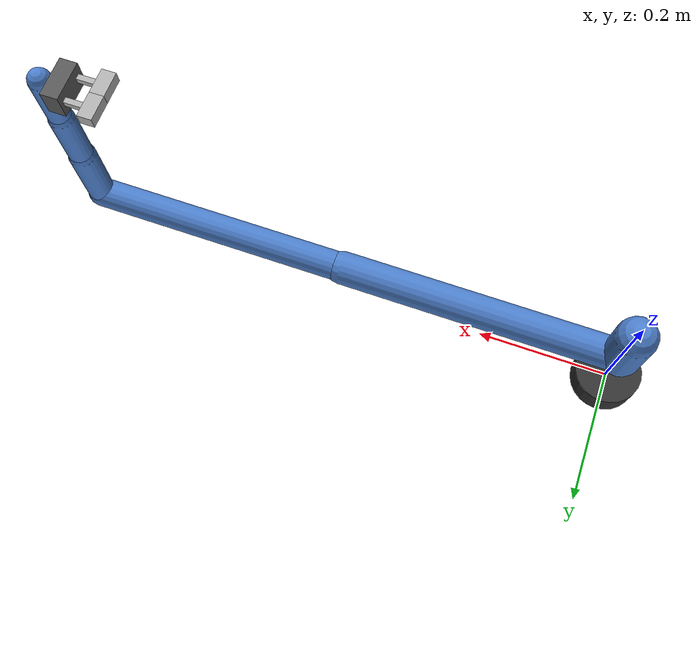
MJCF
<mujoco model="my6dof_base">
  <compiler angle="radian" autolimits="true"/>
  <option gravity="0 0 -9.81" integrator="implicitfast" timestep="0.002"/>

  <default>
    <joint damping="4.0" armature="0.08" limited="true"/>
    <geom contype="1" conaffinity="6" friction="0.8 0.1 0.1" rgba="0.3 0.5 0.8 1"/>
    <position kp="2500" kv="120"/>
  </default>

  <worldbody>
    <body name="robot_base" pos="0 0 0">
      <geom name="base_geom" type="cylinder" size="0.05 0.02" rgba="0.2 0.2 0.2 1"/>

      <body name="link1" pos="0 0 0.089159">
        <joint name="joint_1" type="hinge" axis="0 0 1" range="-6.28319 6.28319"/>
        <geom name="link1_geom" type="capsule" fromto="0 0 0 0 0 0.08" size="0.03"/>

        <body name="link2" pos="0 0 0">
          <joint name="joint_2" type="hinge" axis="0 1 0" range="-3.14159 0"/>
          <geom name="link2_geom" type="capsule" fromto="0 0 0 0.425 0 0" size="0.025"/>

          <body name="link3" pos="0.425 0 0">
            <joint name="joint_3" type="hinge" axis="0 1 0" range="-3.14159 3.14159"/>
            <geom name="link3_geom" type="capsule" fromto="0 0 0 0.39225 0 0" size="0.022"/>

            <body name="link4" pos="0.39225 0 0">
              <joint name="joint_4" type="hinge" axis="0 1 0" range="-6.28319 6.28319"/>
              <geom name="link4_geom" type="capsule" fromto="0 0 0 0 0 0.10915" size="0.02"/>

              <body name="link5" pos="0 0 0.10915">
                <joint name="joint_5" type="hinge" axis="0 0 1" range="-6.28319 6.28319"/>
                <geom name="link5_geom" type="capsule" fromto="0 0 0 0 0 0.09465" size="0.018" contype="8" conaffinity="2"/>

                <body name="link6" pos="0 0 0.09465">
                  <joint name="joint_6" type="hinge" axis="0 1 0" range="-6.28319 6.28319"/>
                  <geom name="link6_geom" type="capsule" fromto="0 0 0 0 0 0.0823" size="0.016" contype="8" conaffinity="2"/>

                  <body name="gripper_mount" pos="0 0 0.0823">
                    <site name="ee_site" pos="0 0 0" size="0.01" rgba="0 1 0 1"/>
                    <body name="tool_mount" pos="0 0 0" quat="0.70710678 0 0.70710678 0">
                      <geom name="gripper_housing_geom" type="box" size="0.018 0.028 0.012" pos="0 0 -0.032" contype="0" conaffinity="0" rgba="0.35 0.35 0.35 1"/>

                      <body name="finger_carriage" pos="0 0 -0.08">
                        <site name="grasp_site" pos="0 0 0" size="0.008" rgba="1 1 0 1"/>

                        <body name="left_finger" pos="0 0 0">
                          <joint name="left_finger_joint" type="slide" axis="0 1 0" range="0 0.025"/>
                          <geom name="left_finger_support_geom" type="box" size="0.004 0.004 0.015" pos="0 0.018 0.025" contype="0" conaffinity="0" rgba="0.7 0.7 0.7 1"/>
                          <geom name="left_finger_geom" type="box" size="0.008 0.018 0.01" pos="0 0.018 0" friction="4.5 0.2 0.2" solref="0.004 1" rgba="0.7 0.7 0.7 1"/>
                        </body>

                        <body name="right_finger" pos="0 0 0">
                          <joint name="right_finger_joint" type="slide" axis="0 -1 0" range="0 0.025"/>
                          <geom name="right_finger_support_geom" type="box" size="0.004 0.004 0.015" pos="0 -0.018 0.025" contype="0" conaffinity="0" rgba="0.7 0.7 0.7 1"/>
                          <geom name="right_finger_geom" type="box" size="0.008 0.018 0.01" pos="0 -0.018 0" friction="4.5 0.2 0.2" solref="0.004 1" rgba="0.7 0.7 0.7 1"/>
                        </body>
                      </body>
                    </body>
                  </body>
                </body>
              </body>
            </body>
          </body>
        </body>
      </body>
    </body>
  </worldbody>

  <actuator>
    <position name="joint_1_ctrl" joint="joint_1" ctrlrange="-6.28319 6.28319"/>
    <position name="joint_2_ctrl" joint="joint_2" ctrlrange="-3.14159 0"/>
    <position name="joint_3_ctrl" joint="joint_3" ctrlrange="-3.14159 3.14159"/>
    <position name="joint_4_ctrl" joint="joint_4" ctrlrange="-6.28319 6.28319"/>
    <position name="joint_5_ctrl" joint="joint_5" ctrlrange="-6.28319 6.28319"/>
    <position name="joint_6_ctrl" joint="joint_6" ctrlrange="-6.28319 6.28319"/>
    <position name="left_finger_ctrl" joint="left_finger_joint" ctrlrange="0 0.025"/>
    <position name="right_finger_ctrl" joint="right_finger_joint" ctrlrange="0 0.025"/>
  </actuator>
</mujoco>
